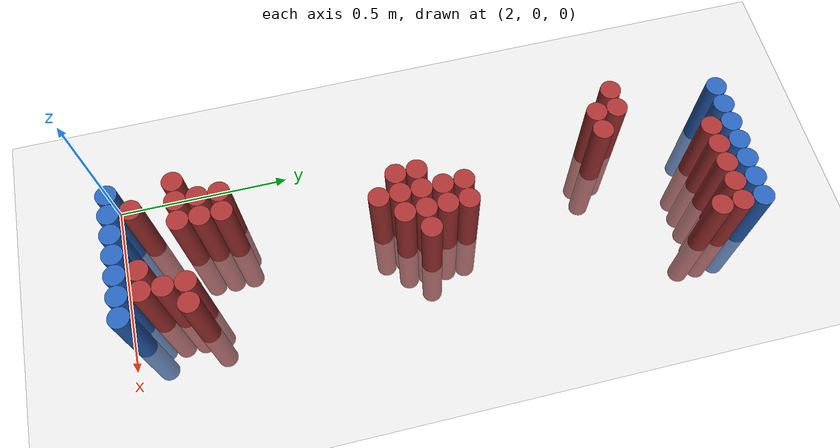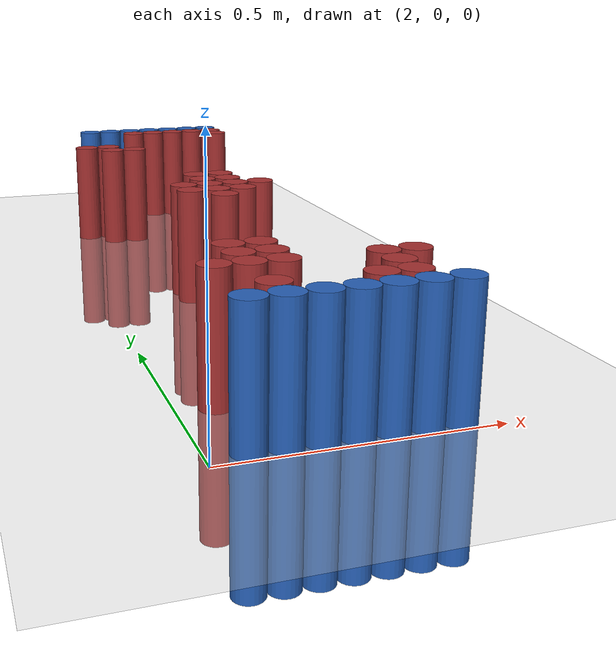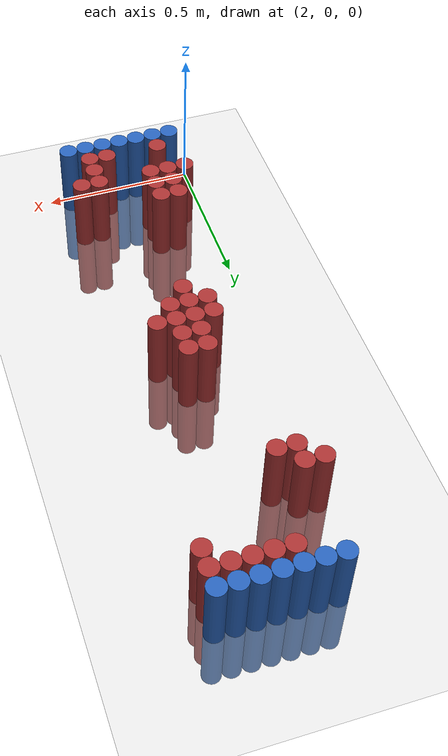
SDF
<sdf version="1.6">
 <world name="default">
  <model name="ground_plane">
   <static>1</static>
   <link name="link">
    <collision name="collision">
     <geometry><plane><normal>0 0 1</normal><size>100 100</size></plane></geometry>
     <surface><friction><ode><mu>100</mu><mu2>50</mu2></ode></friction></surface>
    </collision>
    <visual name="visual">
     <cast_shadows>0</cast_shadows>
     <geometry><plane><normal>0 0 1</normal><size>100 100</size></plane></geometry>
     <material>
      <script><uri>file://media/materials/scripts/gazebo.material</uri><name>Gazebo/Grey</name></script>
     </material>
    </visual>
   </link>
  </model>
  <model name="unit_cylinder_96">
   <static>1</static>
   <pose>2.130000 1.770000 0.000000 0.000000 0.000000 0.000000</pose>
   <link name="link">
    <inertial>
     <mass>1</mass>
     <inertia><ixx>0.145833</ixx><ixy>0</ixy><ixz>0</ixz><iyy>0.145833</iyy><iyz>0</iyz><izz>0.125</izz></inertia>
    </inertial>
    <collision name="collision">
     <geometry><cylinder><radius>0.030000</radius><length>0.5</length></cylinder></geometry>
    </collision>
    <visual name="visual">
     <geometry><cylinder><radius>0.030000</radius><length>0.5</length></cylinder></geometry>
     <material>
      <ambient>0.152000 0.379000 0.720000 1</ambient>
      <diffuse>0.152000 0.379000 0.720000 1</diffuse>
     </material>
     <material>
      <script><name>Gazebo/Grey</name><uri>file://media/materials/scripts/gazebo.material</uri></script>
     </material>
    </visual>
   </link>
  </model>
  <model name="unit_cylinder_97">
   <static>1</static>
   <pose>2.190000 1.770000 0.000000 0.000000 0.000000 0.000000</pose>
   <link name="link">
    <inertial>
     <mass>1</mass>
     <inertia><ixx>0.145833</ixx><ixy>0</ixy><ixz>0</ixz><iyy>0.145833</iyy><iyz>0</iyz><izz>0.125</izz></inertia>
    </inertial>
    <collision name="collision">
     <geometry><cylinder><radius>0.030000</radius><length>0.5</length></cylinder></geometry>
    </collision>
    <visual name="visual">
     <geometry><cylinder><radius>0.030000</radius><length>0.5</length></cylinder></geometry>
     <material>
      <ambient>0.152000 0.379000 0.720000 1</ambient>
      <diffuse>0.152000 0.379000 0.720000 1</diffuse>
     </material>
     <material>
      <script><name>Gazebo/Grey</name><uri>file://media/materials/scripts/gazebo.material</uri></script>
     </material>
    </visual>
   </link>
  </model>
  <model name="unit_cylinder_98">
   <static>1</static>
   <pose>2.250000 1.770000 0.000000 0.000000 0.000000 0.000000</pose>
   <link name="link">
    <inertial>
     <mass>1</mass>
     <inertia><ixx>0.145833</ixx><ixy>0</ixy><ixz>0</ixz><iyy>0.145833</iyy><iyz>0</iyz><izz>0.125</izz></inertia>
    </inertial>
    <collision name="collision">
     <geometry><cylinder><radius>0.030000</radius><length>0.5</length></cylinder></geometry>
    </collision>
    <visual name="visual">
     <geometry><cylinder><radius>0.030000</radius><length>0.5</length></cylinder></geometry>
     <material>
      <ambient>0.152000 0.379000 0.720000 1</ambient>
      <diffuse>0.152000 0.379000 0.720000 1</diffuse>
     </material>
     <material>
      <script><name>Gazebo/Grey</name><uri>file://media/materials/scripts/gazebo.material</uri></script>
     </material>
    </visual>
   </link>
  </model>
  <model name="unit_cylinder_99">
   <static>1</static>
   <pose>2.310000 1.770000 0.000000 0.000000 0.000000 0.000000</pose>
   <link name="link">
    <inertial>
     <mass>1</mass>
     <inertia><ixx>0.145833</ixx><ixy>0</ixy><ixz>0</ixz><iyy>0.145833</iyy><iyz>0</iyz><izz>0.125</izz></inertia>
    </inertial>
    <collision name="collision">
     <geometry><cylinder><radius>0.030000</radius><length>0.5</length></cylinder></geometry>
    </collision>
    <visual name="visual">
     <geometry><cylinder><radius>0.030000</radius><length>0.5</length></cylinder></geometry>
     <material>
      <ambient>0.152000 0.379000 0.720000 1</ambient>
      <diffuse>0.152000 0.379000 0.720000 1</diffuse>
     </material>
     <material>
      <script><name>Gazebo/Grey</name><uri>file://media/materials/scripts/gazebo.material</uri></script>
     </material>
    </visual>
   </link>
  </model>
  <model name="unit_cylinder_100">
   <static>1</static>
   <pose>2.370000 1.770000 0.000000 0.000000 0.000000 0.000000</pose>
   <link name="link">
    <inertial>
     <mass>1</mass>
     <inertia><ixx>0.145833</ixx><ixy>0</ixy><ixz>0</ixz><iyy>0.145833</iyy><iyz>0</iyz><izz>0.125</izz></inertia>
    </inertial>
    <collision name="collision">
     <geometry><cylinder><radius>0.030000</radius><length>0.5</length></cylinder></geometry>
    </collision>
    <visual name="visual">
     <geometry><cylinder><radius>0.030000</radius><length>0.5</length></cylinder></geometry>
     <material>
      <ambient>0.152000 0.379000 0.720000 1</ambient>
      <diffuse>0.152000 0.379000 0.720000 1</diffuse>
     </material>
     <material>
      <script><name>Gazebo/Grey</name><uri>file://media/materials/scripts/gazebo.material</uri></script>
     </material>
    </visual>
   </link>
  </model>
  <model name="unit_cylinder_101">
   <static>1</static>
   <pose>2.430000 1.770000 0.000000 0.000000 0.000000 0.000000</pose>
   <link name="link">
    <inertial>
     <mass>1</mass>
     <inertia><ixx>0.145833</ixx><ixy>0</ixy><ixz>0</ixz><iyy>0.145833</iyy><iyz>0</iyz><izz>0.125</izz></inertia>
    </inertial>
    <collision name="collision">
     <geometry><cylinder><radius>0.030000</radius><length>0.5</length></cylinder></geometry>
    </collision>
    <visual name="visual">
     <geometry><cylinder><radius>0.030000</radius><length>0.5</length></cylinder></geometry>
     <material>
      <ambient>0.152000 0.379000 0.720000 1</ambient>
      <diffuse>0.152000 0.379000 0.720000 1</diffuse>
     </material>
     <material>
      <script><name>Gazebo/Grey</name><uri>file://media/materials/scripts/gazebo.material</uri></script>
     </material>
    </visual>
   </link>
  </model>
  <model name="unit_cylinder_102">
   <static>1</static>
   <pose>2.490000 1.770000 0.000000 0.000000 0.000000 0.000000</pose>
   <link name="link">
    <inertial>
     <mass>1</mass>
     <inertia><ixx>0.145833</ixx><ixy>0</ixy><ixz>0</ixz><iyy>0.145833</iyy><iyz>0</iyz><izz>0.125</izz></inertia>
    </inertial>
    <collision name="collision">
     <geometry><cylinder><radius>0.030000</radius><length>0.5</length></cylinder></geometry>
    </collision>
    <visual name="visual">
     <geometry><cylinder><radius>0.030000</radius><length>0.5</length></cylinder></geometry>
     <material>
      <ambient>0.152000 0.379000 0.720000 1</ambient>
      <diffuse>0.152000 0.379000 0.720000 1</diffuse>
     </material>
     <material>
      <script><name>Gazebo/Grey</name><uri>file://media/materials/scripts/gazebo.material</uri></script>
     </material>
    </visual>
   </link>
  </model>
  <model name="unit_cylinder_125">
   <static>1</static>
   <pose>2.250000 1.710000 0.000000 0.000000 0.000000 0.000000</pose>
   <link name="link">
    <inertial>
     <mass>1</mass>
     <inertia><ixx>0.145833</ixx><ixy>0</ixy><ixz>0</ixz><iyy>0.145833</iyy><iyz>0</iyz><izz>0.125</izz></inertia>
    </inertial>
    <collision name="collision">
     <geometry><cylinder><radius>0.030000</radius><length>0.5</length></cylinder></geometry>
    </collision>
    <visual name="visual">
     <geometry><cylinder><radius>0.030000</radius><length>0.5</length></cylinder></geometry>
     <material>
      <ambient>0.648000 0.192000 0.192000 1</ambient>
      <diffuse>0.648000 0.192000 0.192000 1</diffuse>
     </material>
     <material>
      <script><name>Gazebo/Grey</name><uri>file://media/materials/scripts/gazebo.material</uri></script>
     </material>
    </visual>
   </link>
  </model>
  <model name="unit_cylinder_126">
   <static>1</static>
   <pose>2.310000 1.710000 0.000000 0.000000 0.000000 0.000000</pose>
   <link name="link">
    <inertial>
     <mass>1</mass>
     <inertia><ixx>0.145833</ixx><ixy>0</ixy><ixz>0</ixz><iyy>0.145833</iyy><iyz>0</iyz><izz>0.125</izz></inertia>
    </inertial>
    <collision name="collision">
     <geometry><cylinder><radius>0.030000</radius><length>0.5</length></cylinder></geometry>
    </collision>
    <visual name="visual">
     <geometry><cylinder><radius>0.030000</radius><length>0.5</length></cylinder></geometry>
     <material>
      <ambient>0.648000 0.192000 0.192000 1</ambient>
      <diffuse>0.648000 0.192000 0.192000 1</diffuse>
     </material>
     <material>
      <script><name>Gazebo/Grey</name><uri>file://media/materials/scripts/gazebo.material</uri></script>
     </material>
    </visual>
   </link>
  </model>
  <model name="unit_cylinder_127">
   <static>1</static>
   <pose>2.370000 1.710000 0.000000 0.000000 0.000000 0.000000</pose>
   <link name="link">
    <inertial>
     <mass>1</mass>
     <inertia><ixx>0.145833</ixx><ixy>0</ixy><ixz>0</ixz><iyy>0.145833</iyy><iyz>0</iyz><izz>0.125</izz></inertia>
    </inertial>
    <collision name="collision">
     <geometry><cylinder><radius>0.030000</radius><length>0.5</length></cylinder></geometry>
    </collision>
    <visual name="visual">
     <geometry><cylinder><radius>0.030000</radius><length>0.5</length></cylinder></geometry>
     <material>
      <ambient>0.648000 0.192000 0.192000 1</ambient>
      <diffuse>0.648000 0.192000 0.192000 1</diffuse>
     </material>
     <material>
      <script><name>Gazebo/Grey</name><uri>file://media/materials/scripts/gazebo.material</uri></script>
     </material>
    </visual>
   </link>
  </model>
  <model name="unit_cylinder_128">
   <static>1</static>
   <pose>2.430000 1.710000 0.000000 0.000000 0.000000 0.000000</pose>
   <link name="link">
    <inertial>
     <mass>1</mass>
     <inertia><ixx>0.145833</ixx><ixy>0</ixy><ixz>0</ixz><iyy>0.145833</iyy><iyz>0</iyz><izz>0.125</izz></inertia>
    </inertial>
    <collision name="collision">
     <geometry><cylinder><radius>0.030000</radius><length>0.5</length></cylinder></geometry>
    </collision>
    <visual name="visual">
     <geometry><cylinder><radius>0.030000</radius><length>0.5</length></cylinder></geometry>
     <material>
      <ambient>0.648000 0.192000 0.192000 1</ambient>
      <diffuse>0.648000 0.192000 0.192000 1</diffuse>
     </material>
     <material>
      <script><name>Gazebo/Grey</name><uri>file://media/materials/scripts/gazebo.material</uri></script>
     </material>
    </visual>
   </link>
  </model>
  <model name="unit_cylinder_129">
   <static>1</static>
   <pose>2.490000 1.710000 0.000000 0.000000 0.000000 0.000000</pose>
   <link name="link">
    <inertial>
     <mass>1</mass>
     <inertia><ixx>0.145833</ixx><ixy>0</ixy><ixz>0</ixz><iyy>0.145833</iyy><iyz>0</iyz><izz>0.125</izz></inertia>
    </inertial>
    <collision name="collision">
     <geometry><cylinder><radius>0.030000</radius><length>0.5</length></cylinder></geometry>
    </collision>
    <visual name="visual">
     <geometry><cylinder><radius>0.030000</radius><length>0.5</length></cylinder></geometry>
     <material>
      <ambient>0.648000 0.192000 0.192000 1</ambient>
      <diffuse>0.648000 0.192000 0.192000 1</diffuse>
     </material>
     <material>
      <script><name>Gazebo/Grey</name><uri>file://media/materials/scripts/gazebo.material</uri></script>
     </material>
    </visual>
   </link>
  </model>
  <model name="unit_cylinder_143">
   <static>1</static>
   <pose>2.490000 1.650000 0.000000 0.000000 0.000000 0.000000</pose>
   <link name="link">
    <inertial>
     <mass>1</mass>
     <inertia><ixx>0.145833</ixx><ixy>0</ixy><ixz>0</ixz><iyy>0.145833</iyy><iyz>0</iyz><izz>0.125</izz></inertia>
    </inertial>
    <collision name="collision">
     <geometry><cylinder><radius>0.030000</radius><length>0.5</length></cylinder></geometry>
    </collision>
    <visual name="visual">
     <geometry><cylinder><radius>0.030000</radius><length>0.5</length></cylinder></geometry>
     <material>
      <ambient>0.648000 0.192000 0.192000 1</ambient>
      <diffuse>0.648000 0.192000 0.192000 1</diffuse>
     </material>
     <material>
      <script><name>Gazebo/Grey</name><uri>file://media/materials/scripts/gazebo.material</uri></script>
     </material>
    </visual>
   </link>
  </model>
  <model name="unit_cylinder_164">
   <static>1</static>
   <pose>2.070000 1.470000 0.000000 0.000000 0.000000 0.000000</pose>
   <link name="link">
    <inertial>
     <mass>1</mass>
     <inertia><ixx>0.145833</ixx><ixy>0</ixy><ixz>0</ixz><iyy>0.145833</iyy><iyz>0</iyz><izz>0.125</izz></inertia>
    </inertial>
    <collision name="collision">
     <geometry><cylinder><radius>0.030000</radius><length>0.5</length></cylinder></geometry>
    </collision>
    <visual name="visual">
     <geometry><cylinder><radius>0.030000</radius><length>0.5</length></cylinder></geometry>
     <material>
      <ambient>0.648000 0.192000 0.192000 1</ambient>
      <diffuse>0.648000 0.192000 0.192000 1</diffuse>
     </material>
     <material>
      <script><name>Gazebo/Grey</name><uri>file://media/materials/scripts/gazebo.material</uri></script>
     </material>
    </visual>
   </link>
  </model>
  <model name="unit_cylinder_165">
   <static>1</static>
   <pose>2.130000 1.470000 0.000000 0.000000 0.000000 0.000000</pose>
   <link name="link">
    <inertial>
     <mass>1</mass>
     <inertia><ixx>0.145833</ixx><ixy>0</ixy><ixz>0</ixz><iyy>0.145833</iyy><iyz>0</iyz><izz>0.125</izz></inertia>
    </inertial>
    <collision name="collision">
     <geometry><cylinder><radius>0.030000</radius><length>0.5</length></cylinder></geometry>
    </collision>
    <visual name="visual">
     <geometry><cylinder><radius>0.030000</radius><length>0.5</length></cylinder></geometry>
     <material>
      <ambient>0.648000 0.192000 0.192000 1</ambient>
      <diffuse>0.648000 0.192000 0.192000 1</diffuse>
     </material>
     <material>
      <script><name>Gazebo/Grey</name><uri>file://media/materials/scripts/gazebo.material</uri></script>
     </material>
    </visual>
   </link>
  </model>
  <model name="unit_cylinder_169">
   <static>1</static>
   <pose>2.130000 1.410000 0.000000 0.000000 0.000000 0.000000</pose>
   <link name="link">
    <inertial>
     <mass>1</mass>
     <inertia><ixx>0.145833</ixx><ixy>0</ixy><ixz>0</ixz><iyy>0.145833</iyy><iyz>0</iyz><izz>0.125</izz></inertia>
    </inertial>
    <collision name="collision">
     <geometry><cylinder><radius>0.030000</radius><length>0.5</length></cylinder></geometry>
    </collision>
    <visual name="visual">
     <geometry><cylinder><radius>0.030000</radius><length>0.5</length></cylinder></geometry>
     <material>
      <ambient>0.648000 0.192000 0.192000 1</ambient>
      <diffuse>0.648000 0.192000 0.192000 1</diffuse>
     </material>
     <material>
      <script><name>Gazebo/Grey</name><uri>file://media/materials/scripts/gazebo.material</uri></script>
     </material>
    </visual>
   </link>
  </model>
  <model name="unit_cylinder_170">
   <static>1</static>
   <pose>2.190000 1.410000 0.000000 0.000000 0.000000 0.000000</pose>
   <link name="link">
    <inertial>
     <mass>1</mass>
     <inertia><ixx>0.145833</ixx><ixy>0</ixy><ixz>0</ixz><iyy>0.145833</iyy><iyz>0</iyz><izz>0.125</izz></inertia>
    </inertial>
    <collision name="collision">
     <geometry><cylinder><radius>0.030000</radius><length>0.5</length></cylinder></geometry>
    </collision>
    <visual name="visual">
     <geometry><cylinder><radius>0.030000</radius><length>0.5</length></cylinder></geometry>
     <material>
      <ambient>0.648000 0.192000 0.192000 1</ambient>
      <diffuse>0.648000 0.192000 0.192000 1</diffuse>
     </material>
     <material>
      <script><name>Gazebo/Grey</name><uri>file://media/materials/scripts/gazebo.material</uri></script>
     </material>
    </visual>
   </link>
  </model>
  <model name="unit_cylinder_187">
   <static>1</static>
   <pose>2.250000 0.990000 0.000000 0.000000 0.000000 0.000000</pose>
   <link name="link">
    <inertial>
     <mass>1</mass>
     <inertia><ixx>0.145833</ixx><ixy>0</ixy><ixz>0</ixz><iyy>0.145833</iyy><iyz>0</iyz><izz>0.125</izz></inertia>
    </inertial>
    <collision name="collision">
     <geometry><cylinder><radius>0.030000</radius><length>0.5</length></cylinder></geometry>
    </collision>
    <visual name="visual">
     <geometry><cylinder><radius>0.030000</radius><length>0.5</length></cylinder></geometry>
     <material>
      <ambient>0.648000 0.192000 0.192000 1</ambient>
      <diffuse>0.648000 0.192000 0.192000 1</diffuse>
     </material>
     <material>
      <script><name>Gazebo/Grey</name><uri>file://media/materials/scripts/gazebo.material</uri></script>
     </material>
    </visual>
   </link>
  </model>
  <model name="unit_cylinder_188">
   <static>1</static>
   <pose>2.310000 0.990000 0.000000 0.000000 0.000000 0.000000</pose>
   <link name="link">
    <inertial>
     <mass>1</mass>
     <inertia><ixx>0.145833</ixx><ixy>0</ixy><ixz>0</ixz><iyy>0.145833</iyy><iyz>0</iyz><izz>0.125</izz></inertia>
    </inertial>
    <collision name="collision">
     <geometry><cylinder><radius>0.030000</radius><length>0.5</length></cylinder></geometry>
    </collision>
    <visual name="visual">
     <geometry><cylinder><radius>0.030000</radius><length>0.5</length></cylinder></geometry>
     <material>
      <ambient>0.648000 0.192000 0.192000 1</ambient>
      <diffuse>0.648000 0.192000 0.192000 1</diffuse>
     </material>
     <material>
      <script><name>Gazebo/Grey</name><uri>file://media/materials/scripts/gazebo.material</uri></script>
     </material>
    </visual>
   </link>
  </model>
  <model name="unit_cylinder_190">
   <static>1</static>
   <pose>2.250000 0.930000 0.000000 0.000000 0.000000 0.000000</pose>
   <link name="link">
    <inertial>
     <mass>1</mass>
     <inertia><ixx>0.145833</ixx><ixy>0</ixy><ixz>0</ixz><iyy>0.145833</iyy><iyz>0</iyz><izz>0.125</izz></inertia>
    </inertial>
    <collision name="collision">
     <geometry><cylinder><radius>0.030000</radius><length>0.5</length></cylinder></geometry>
    </collision>
    <visual name="visual">
     <geometry><cylinder><radius>0.030000</radius><length>0.5</length></cylinder></geometry>
     <material>
      <ambient>0.648000 0.192000 0.192000 1</ambient>
      <diffuse>0.648000 0.192000 0.192000 1</diffuse>
     </material>
     <material>
      <script><name>Gazebo/Grey</name><uri>file://media/materials/scripts/gazebo.material</uri></script>
     </material>
    </visual>
   </link>
  </model>
  <model name="unit_cylinder_191">
   <static>1</static>
   <pose>2.310000 0.930000 0.000000 0.000000 0.000000 0.000000</pose>
   <link name="link">
    <inertial>
     <mass>1</mass>
     <inertia><ixx>0.145833</ixx><ixy>0</ixy><ixz>0</ixz><iyy>0.145833</iyy><iyz>0</iyz><izz>0.125</izz></inertia>
    </inertial>
    <collision name="collision">
     <geometry><cylinder><radius>0.030000</radius><length>0.5</length></cylinder></geometry>
    </collision>
    <visual name="visual">
     <geometry><cylinder><radius>0.030000</radius><length>0.5</length></cylinder></geometry>
     <material>
      <ambient>0.648000 0.192000 0.192000 1</ambient>
      <diffuse>0.648000 0.192000 0.192000 1</diffuse>
     </material>
     <material>
      <script><name>Gazebo/Grey</name><uri>file://media/materials/scripts/gazebo.material</uri></script>
     </material>
    </visual>
   </link>
  </model>
  <model name="unit_cylinder_193">
   <static>1</static>
   <pose>2.190000 0.870000 0.000000 0.000000 0.000000 0.000000</pose>
   <link name="link">
    <inertial>
     <mass>1</mass>
     <inertia><ixx>0.145833</ixx><ixy>0</ixy><ixz>0</ixz><iyy>0.145833</iyy><iyz>0</iyz><izz>0.125</izz></inertia>
    </inertial>
    <collision name="collision">
     <geometry><cylinder><radius>0.030000</radius><length>0.5</length></cylinder></geometry>
    </collision>
    <visual name="visual">
     <geometry><cylinder><radius>0.030000</radius><length>0.5</length></cylinder></geometry>
     <material>
      <ambient>0.648000 0.192000 0.192000 1</ambient>
      <diffuse>0.648000 0.192000 0.192000 1</diffuse>
     </material>
     <material>
      <script><name>Gazebo/Grey</name><uri>file://media/materials/scripts/gazebo.material</uri></script>
     </material>
    </visual>
   </link>
  </model>
  <model name="unit_cylinder_194">
   <static>1</static>
   <pose>2.250000 0.870000 0.000000 0.000000 0.000000 0.000000</pose>
   <link name="link">
    <inertial>
     <mass>1</mass>
     <inertia><ixx>0.145833</ixx><ixy>0</ixy><ixz>0</ixz><iyy>0.145833</iyy><iyz>0</iyz><izz>0.125</izz></inertia>
    </inertial>
    <collision name="collision">
     <geometry><cylinder><radius>0.030000</radius><length>0.5</length></cylinder></geometry>
    </collision>
    <visual name="visual">
     <geometry><cylinder><radius>0.030000</radius><length>0.5</length></cylinder></geometry>
     <material>
      <ambient>0.648000 0.192000 0.192000 1</ambient>
      <diffuse>0.648000 0.192000 0.192000 1</diffuse>
     </material>
     <material>
      <script><name>Gazebo/Grey</name><uri>file://media/materials/scripts/gazebo.material</uri></script>
     </material>
    </visual>
   </link>
  </model>
  <model name="unit_cylinder_195">
   <static>1</static>
   <pose>2.310000 0.870000 0.000000 0.000000 0.000000 0.000000</pose>
   <link name="link">
    <inertial>
     <mass>1</mass>
     <inertia><ixx>0.145833</ixx><ixy>0</ixy><ixz>0</ixz><iyy>0.145833</iyy><iyz>0</iyz><izz>0.125</izz></inertia>
    </inertial>
    <collision name="collision">
     <geometry><cylinder><radius>0.030000</radius><length>0.5</length></cylinder></geometry>
    </collision>
    <visual name="visual">
     <geometry><cylinder><radius>0.030000</radius><length>0.5</length></cylinder></geometry>
     <material>
      <ambient>0.648000 0.192000 0.192000 1</ambient>
      <diffuse>0.648000 0.192000 0.192000 1</diffuse>
     </material>
     <material>
      <script><name>Gazebo/Grey</name><uri>file://media/materials/scripts/gazebo.material</uri></script>
     </material>
    </visual>
   </link>
  </model>
  <model name="unit_cylinder_196">
   <static>1</static>
   <pose>2.370000 0.870000 0.000000 0.000000 0.000000 0.000000</pose>
   <link name="link">
    <inertial>
     <mass>1</mass>
     <inertia><ixx>0.145833</ixx><ixy>0</ixy><ixz>0</ixz><iyy>0.145833</iyy><iyz>0</iyz><izz>0.125</izz></inertia>
    </inertial>
    <collision name="collision">
     <geometry><cylinder><radius>0.030000</radius><length>0.5</length></cylinder></geometry>
    </collision>
    <visual name="visual">
     <geometry><cylinder><radius>0.030000</radius><length>0.5</length></cylinder></geometry>
     <material>
      <ambient>0.648000 0.192000 0.192000 1</ambient>
      <diffuse>0.648000 0.192000 0.192000 1</diffuse>
     </material>
     <material>
      <script><name>Gazebo/Grey</name><uri>file://media/materials/scripts/gazebo.material</uri></script>
     </material>
    </visual>
   </link>
  </model>
  <model name="unit_cylinder_199">
   <static>1</static>
   <pose>2.190000 0.810000 0.000000 0.000000 0.000000 0.000000</pose>
   <link name="link">
    <inertial>
     <mass>1</mass>
     <inertia><ixx>0.145833</ixx><ixy>0</ixy><ixz>0</ixz><iyy>0.145833</iyy><iyz>0</iyz><izz>0.125</izz></inertia>
    </inertial>
    <collision name="collision">
     <geometry><cylinder><radius>0.030000</radius><length>0.5</length></cylinder></geometry>
    </collision>
    <visual name="visual">
     <geometry><cylinder><radius>0.030000</radius><length>0.5</length></cylinder></geometry>
     <material>
      <ambient>0.648000 0.192000 0.192000 1</ambient>
      <diffuse>0.648000 0.192000 0.192000 1</diffuse>
     </material>
     <material>
      <script><name>Gazebo/Grey</name><uri>file://media/materials/scripts/gazebo.material</uri></script>
     </material>
    </visual>
   </link>
  </model>
  <model name="unit_cylinder_200">
   <static>1</static>
   <pose>2.250000 0.810000 0.000000 0.000000 0.000000 0.000000</pose>
   <link name="link">
    <inertial>
     <mass>1</mass>
     <inertia><ixx>0.145833</ixx><ixy>0</ixy><ixz>0</ixz><iyy>0.145833</iyy><iyz>0</iyz><izz>0.125</izz></inertia>
    </inertial>
    <collision name="collision">
     <geometry><cylinder><radius>0.030000</radius><length>0.5</length></cylinder></geometry>
    </collision>
    <visual name="visual">
     <geometry><cylinder><radius>0.030000</radius><length>0.5</length></cylinder></geometry>
     <material>
      <ambient>0.648000 0.192000 0.192000 1</ambient>
      <diffuse>0.648000 0.192000 0.192000 1</diffuse>
     </material>
     <material>
      <script><name>Gazebo/Grey</name><uri>file://media/materials/scripts/gazebo.material</uri></script>
     </material>
    </visual>
   </link>
  </model>
  <model name="unit_cylinder_201">
   <static>1</static>
   <pose>2.310000 0.810000 0.000000 0.000000 0.000000 0.000000</pose>
   <link name="link">
    <inertial>
     <mass>1</mass>
     <inertia><ixx>0.145833</ixx><ixy>0</ixy><ixz>0</ixz><iyy>0.145833</iyy><iyz>0</iyz><izz>0.125</izz></inertia>
    </inertial>
    <collision name="collision">
     <geometry><cylinder><radius>0.030000</radius><length>0.5</length></cylinder></geometry>
    </collision>
    <visual name="visual">
     <geometry><cylinder><radius>0.030000</radius><length>0.5</length></cylinder></geometry>
     <material>
      <ambient>0.648000 0.192000 0.192000 1</ambient>
      <diffuse>0.648000 0.192000 0.192000 1</diffuse>
     </material>
     <material>
      <script><name>Gazebo/Grey</name><uri>file://media/materials/scripts/gazebo.material</uri></script>
     </material>
    </visual>
   </link>
  </model>
  <model name="unit_cylinder_204">
   <static>1</static>
   <pose>2.250000 0.750000 0.000000 0.000000 0.000000 0.000000</pose>
   <link name="link">
    <inertial>
     <mass>1</mass>
     <inertia><ixx>0.145833</ixx><ixy>0</ixy><ixz>0</ixz><iyy>0.145833</iyy><iyz>0</iyz><izz>0.125</izz></inertia>
    </inertial>
    <collision name="collision">
     <geometry><cylinder><radius>0.030000</radius><length>0.5</length></cylinder></geometry>
    </collision>
    <visual name="visual">
     <geometry><cylinder><radius>0.030000</radius><length>0.5</length></cylinder></geometry>
     <material>
      <ambient>0.648000 0.192000 0.192000 1</ambient>
      <diffuse>0.648000 0.192000 0.192000 1</diffuse>
     </material>
     <material>
      <script><name>Gazebo/Grey</name><uri>file://media/materials/scripts/gazebo.material</uri></script>
     </material>
    </visual>
   </link>
  </model>
  <model name="unit_cylinder_226">
   <static>1</static>
   <pose>2.130000 0.330000 0.000000 0.000000 0.000000 0.000000</pose>
   <link name="link">
    <inertial>
     <mass>1</mass>
     <inertia><ixx>0.145833</ixx><ixy>0</ixy><ixz>0</ixz><iyy>0.145833</iyy><iyz>0</iyz><izz>0.125</izz></inertia>
    </inertial>
    <collision name="collision">
     <geometry><cylinder><radius>0.030000</radius><length>0.5</length></cylinder></geometry>
    </collision>
    <visual name="visual">
     <geometry><cylinder><radius>0.030000</radius><length>0.5</length></cylinder></geometry>
     <material>
      <ambient>0.648000 0.192000 0.192000 1</ambient>
      <diffuse>0.648000 0.192000 0.192000 1</diffuse>
     </material>
     <material>
      <script><name>Gazebo/Grey</name><uri>file://media/materials/scripts/gazebo.material</uri></script>
     </material>
    </visual>
   </link>
  </model>
  <model name="unit_cylinder_227">
   <static>1</static>
   <pose>2.190000 0.330000 0.000000 0.000000 0.000000 0.000000</pose>
   <link name="link">
    <inertial>
     <mass>1</mass>
     <inertia><ixx>0.145833</ixx><ixy>0</ixy><ixz>0</ixz><iyy>0.145833</iyy><iyz>0</iyz><izz>0.125</izz></inertia>
    </inertial>
    <collision name="collision">
     <geometry><cylinder><radius>0.030000</radius><length>0.5</length></cylinder></geometry>
    </collision>
    <visual name="visual">
     <geometry><cylinder><radius>0.030000</radius><length>0.5</length></cylinder></geometry>
     <material>
      <ambient>0.648000 0.192000 0.192000 1</ambient>
      <diffuse>0.648000 0.192000 0.192000 1</diffuse>
     </material>
     <material>
      <script><name>Gazebo/Grey</name><uri>file://media/materials/scripts/gazebo.material</uri></script>
     </material>
    </visual>
   </link>
  </model>
  <model name="unit_cylinder_231">
   <static>1</static>
   <pose>2.130000 0.270000 0.000000 0.000000 0.000000 0.000000</pose>
   <link name="link">
    <inertial>
     <mass>1</mass>
     <inertia><ixx>0.145833</ixx><ixy>0</ixy><ixz>0</ixz><iyy>0.145833</iyy><iyz>0</iyz><izz>0.125</izz></inertia>
    </inertial>
    <collision name="collision">
     <geometry><cylinder><radius>0.030000</radius><length>0.5</length></cylinder></geometry>
    </collision>
    <visual name="visual">
     <geometry><cylinder><radius>0.030000</radius><length>0.5</length></cylinder></geometry>
     <material>
      <ambient>0.648000 0.192000 0.192000 1</ambient>
      <diffuse>0.648000 0.192000 0.192000 1</diffuse>
     </material>
     <material>
      <script><name>Gazebo/Grey</name><uri>file://media/materials/scripts/gazebo.material</uri></script>
     </material>
    </visual>
   </link>
  </model>
  <model name="unit_cylinder_232">
   <static>1</static>
   <pose>2.190000 0.270000 0.000000 0.000000 0.000000 0.000000</pose>
   <link name="link">
    <inertial>
     <mass>1</mass>
     <inertia><ixx>0.145833</ixx><ixy>0</ixy><ixz>0</ixz><iyy>0.145833</iyy><iyz>0</iyz><izz>0.125</izz></inertia>
    </inertial>
    <collision name="collision">
     <geometry><cylinder><radius>0.030000</radius><length>0.5</length></cylinder></geometry>
    </collision>
    <visual name="visual">
     <geometry><cylinder><radius>0.030000</radius><length>0.5</length></cylinder></geometry>
     <material>
      <ambient>0.648000 0.192000 0.192000 1</ambient>
      <diffuse>0.648000 0.192000 0.192000 1</diffuse>
     </material>
     <material>
      <script><name>Gazebo/Grey</name><uri>file://media/materials/scripts/gazebo.material</uri></script>
     </material>
    </visual>
   </link>
  </model>
  <model name="unit_cylinder_236">
   <static>1</static>
   <pose>2.070000 0.210000 0.000000 0.000000 0.000000 0.000000</pose>
   <link name="link">
    <inertial>
     <mass>1</mass>
     <inertia><ixx>0.145833</ixx><ixy>0</ixy><ixz>0</ixz><iyy>0.145833</iyy><iyz>0</iyz><izz>0.125</izz></inertia>
    </inertial>
    <collision name="collision">
     <geometry><cylinder><radius>0.030000</radius><length>0.5</length></cylinder></geometry>
    </collision>
    <visual name="visual">
     <geometry><cylinder><radius>0.030000</radius><length>0.5</length></cylinder></geometry>
     <material>
      <ambient>0.648000 0.192000 0.192000 1</ambient>
      <diffuse>0.648000 0.192000 0.192000 1</diffuse>
     </material>
     <material>
      <script><name>Gazebo/Grey</name><uri>file://media/materials/scripts/gazebo.material</uri></script>
     </material>
    </visual>
   </link>
  </model>
  <model name="unit_cylinder_237">
   <static>1</static>
   <pose>2.130000 0.210000 0.000000 0.000000 0.000000 0.000000</pose>
   <link name="link">
    <inertial>
     <mass>1</mass>
     <inertia><ixx>0.145833</ixx><ixy>0</ixy><ixz>0</ixz><iyy>0.145833</iyy><iyz>0</iyz><izz>0.125</izz></inertia>
    </inertial>
    <collision name="collision">
     <geometry><cylinder><radius>0.030000</radius><length>0.5</length></cylinder></geometry>
    </collision>
    <visual name="visual">
     <geometry><cylinder><radius>0.030000</radius><length>0.5</length></cylinder></geometry>
     <material>
      <ambient>0.648000 0.192000 0.192000 1</ambient>
      <diffuse>0.648000 0.192000 0.192000 1</diffuse>
     </material>
     <material>
      <script><name>Gazebo/Grey</name><uri>file://media/materials/scripts/gazebo.material</uri></script>
     </material>
    </visual>
   </link>
  </model>
  <model name="unit_cylinder_238">
   <static>1</static>
   <pose>2.190000 0.210000 0.000000 0.000000 0.000000 0.000000</pose>
   <link name="link">
    <inertial>
     <mass>1</mass>
     <inertia><ixx>0.145833</ixx><ixy>0</ixy><ixz>0</ixz><iyy>0.145833</iyy><iyz>0</iyz><izz>0.125</izz></inertia>
    </inertial>
    <collision name="collision">
     <geometry><cylinder><radius>0.030000</radius><length>0.5</length></cylinder></geometry>
    </collision>
    <visual name="visual">
     <geometry><cylinder><radius>0.030000</radius><length>0.5</length></cylinder></geometry>
     <material>
      <ambient>0.648000 0.192000 0.192000 1</ambient>
      <diffuse>0.648000 0.192000 0.192000 1</diffuse>
     </material>
     <material>
      <script><name>Gazebo/Grey</name><uri>file://media/materials/scripts/gazebo.material</uri></script>
     </material>
    </visual>
   </link>
  </model>
  <model name="unit_cylinder_239">
   <static>1</static>
   <pose>2.370000 0.210000 0.000000 0.000000 0.000000 0.000000</pose>
   <link name="link">
    <inertial>
     <mass>1</mass>
     <inertia><ixx>0.145833</ixx><ixy>0</ixy><ixz>0</ixz><iyy>0.145833</iyy><iyz>0</iyz><izz>0.125</izz></inertia>
    </inertial>
    <collision name="collision">
     <geometry><cylinder><radius>0.030000</radius><length>0.5</length></cylinder></geometry>
    </collision>
    <visual name="visual">
     <geometry><cylinder><radius>0.030000</radius><length>0.5</length></cylinder></geometry>
     <material>
      <ambient>0.648000 0.192000 0.192000 1</ambient>
      <diffuse>0.648000 0.192000 0.192000 1</diffuse>
     </material>
     <material>
      <script><name>Gazebo/Grey</name><uri>file://media/materials/scripts/gazebo.material</uri></script>
     </material>
    </visual>
   </link>
  </model>
  <model name="unit_cylinder_240">
   <static>1</static>
   <pose>2.430000 0.210000 0.000000 0.000000 0.000000 0.000000</pose>
   <link name="link">
    <inertial>
     <mass>1</mass>
     <inertia><ixx>0.145833</ixx><ixy>0</ixy><ixz>0</ixz><iyy>0.145833</iyy><iyz>0</iyz><izz>0.125</izz></inertia>
    </inertial>
    <collision name="collision">
     <geometry><cylinder><radius>0.030000</radius><length>0.5</length></cylinder></geometry>
    </collision>
    <visual name="visual">
     <geometry><cylinder><radius>0.030000</radius><length>0.5</length></cylinder></geometry>
     <material>
      <ambient>0.648000 0.192000 0.192000 1</ambient>
      <diffuse>0.648000 0.192000 0.192000 1</diffuse>
     </material>
     <material>
      <script><name>Gazebo/Grey</name><uri>file://media/materials/scripts/gazebo.material</uri></script>
     </material>
    </visual>
   </link>
  </model>
  <model name="unit_cylinder_243">
   <static>1</static>
   <pose>2.370000 0.150000 0.000000 0.000000 0.000000 0.000000</pose>
   <link name="link">
    <inertial>
     <mass>1</mass>
     <inertia><ixx>0.145833</ixx><ixy>0</ixy><ixz>0</ixz><iyy>0.145833</iyy><iyz>0</iyz><izz>0.125</izz></inertia>
    </inertial>
    <collision name="collision">
     <geometry><cylinder><radius>0.030000</radius><length>0.5</length></cylinder></geometry>
    </collision>
    <visual name="visual">
     <geometry><cylinder><radius>0.030000</radius><length>0.5</length></cylinder></geometry>
     <material>
      <ambient>0.648000 0.192000 0.192000 1</ambient>
      <diffuse>0.648000 0.192000 0.192000 1</diffuse>
     </material>
     <material>
      <script><name>Gazebo/Grey</name><uri>file://media/materials/scripts/gazebo.material</uri></script>
     </material>
    </visual>
   </link>
  </model>
  <model name="unit_cylinder_246">
   <static>1</static>
   <pose>2.130000 0.090000 0.000000 0.000000 0.000000 0.000000</pose>
   <link name="link">
    <inertial>
     <mass>1</mass>
     <inertia><ixx>0.145833</ixx><ixy>0</ixy><ixz>0</ixz><iyy>0.145833</iyy><iyz>0</iyz><izz>0.125</izz></inertia>
    </inertial>
    <collision name="collision">
     <geometry><cylinder><radius>0.030000</radius><length>0.5</length></cylinder></geometry>
    </collision>
    <visual name="visual">
     <geometry><cylinder><radius>0.030000</radius><length>0.5</length></cylinder></geometry>
     <material>
      <ambient>0.648000 0.192000 0.192000 1</ambient>
      <diffuse>0.648000 0.192000 0.192000 1</diffuse>
     </material>
     <material>
      <script><name>Gazebo/Grey</name><uri>file://media/materials/scripts/gazebo.material</uri></script>
     </material>
    </visual>
   </link>
  </model>
  <model name="unit_cylinder_247">
   <static>1</static>
   <pose>2.310000 0.090000 0.000000 0.000000 0.000000 0.000000</pose>
   <link name="link">
    <inertial>
     <mass>1</mass>
     <inertia><ixx>0.145833</ixx><ixy>0</ixy><ixz>0</ixz><iyy>0.145833</iyy><iyz>0</iyz><izz>0.125</izz></inertia>
    </inertial>
    <collision name="collision">
     <geometry><cylinder><radius>0.030000</radius><length>0.5</length></cylinder></geometry>
    </collision>
    <visual name="visual">
     <geometry><cylinder><radius>0.030000</radius><length>0.5</length></cylinder></geometry>
     <material>
      <ambient>0.648000 0.192000 0.192000 1</ambient>
      <diffuse>0.648000 0.192000 0.192000 1</diffuse>
     </material>
     <material>
      <script><name>Gazebo/Grey</name><uri>file://media/materials/scripts/gazebo.material</uri></script>
     </material>
    </visual>
   </link>
  </model>
  <model name="unit_cylinder_248">
   <static>1</static>
   <pose>2.370000 0.090000 0.000000 0.000000 0.000000 0.000000</pose>
   <link name="link">
    <inertial>
     <mass>1</mass>
     <inertia><ixx>0.145833</ixx><ixy>0</ixy><ixz>0</ixz><iyy>0.145833</iyy><iyz>0</iyz><izz>0.125</izz></inertia>
    </inertial>
    <collision name="collision">
     <geometry><cylinder><radius>0.030000</radius><length>0.5</length></cylinder></geometry>
    </collision>
    <visual name="visual">
     <geometry><cylinder><radius>0.030000</radius><length>0.5</length></cylinder></geometry>
     <material>
      <ambient>0.648000 0.192000 0.192000 1</ambient>
      <diffuse>0.648000 0.192000 0.192000 1</diffuse>
     </material>
     <material>
      <script><name>Gazebo/Grey</name><uri>file://media/materials/scripts/gazebo.material</uri></script>
     </material>
    </visual>
   </link>
  </model>
  <model name="unit_cylinder_261">
   <static>1</static>
   <pose>2.070000 0.030000 0.000000 0.000000 0.000000 0.000000</pose>
   <link name="link">
    <inertial>
     <mass>1</mass>
     <inertia><ixx>0.145833</ixx><ixy>0</ixy><ixz>0</ixz><iyy>0.145833</iyy><iyz>0</iyz><izz>0.125</izz></inertia>
    </inertial>
    <collision name="collision">
     <geometry><cylinder><radius>0.030000</radius><length>0.5</length></cylinder></geometry>
    </collision>
    <visual name="visual">
     <geometry><cylinder><radius>0.030000</radius><length>0.5</length></cylinder></geometry>
     <material>
      <ambient>0.152000 0.379000 0.720000 1</ambient>
      <diffuse>0.152000 0.379000 0.720000 1</diffuse>
     </material>
     <material>
      <script><name>Gazebo/Grey</name><uri>file://media/materials/scripts/gazebo.material</uri></script>
     </material>
    </visual>
   </link>
  </model>
  <model name="unit_cylinder_262">
   <static>1</static>
   <pose>2.130000 0.030000 0.000000 0.000000 0.000000 0.000000</pose>
   <link name="link">
    <inertial>
     <mass>1</mass>
     <inertia><ixx>0.145833</ixx><ixy>0</ixy><ixz>0</ixz><iyy>0.145833</iyy><iyz>0</iyz><izz>0.125</izz></inertia>
    </inertial>
    <collision name="collision">
     <geometry><cylinder><radius>0.030000</radius><length>0.5</length></cylinder></geometry>
    </collision>
    <visual name="visual">
     <geometry><cylinder><radius>0.030000</radius><length>0.5</length></cylinder></geometry>
     <material>
      <ambient>0.152000 0.379000 0.720000 1</ambient>
      <diffuse>0.152000 0.379000 0.720000 1</diffuse>
     </material>
     <material>
      <script><name>Gazebo/Grey</name><uri>file://media/materials/scripts/gazebo.material</uri></script>
     </material>
    </visual>
   </link>
  </model>
  <model name="unit_cylinder_263">
   <static>1</static>
   <pose>2.190000 0.030000 0.000000 0.000000 0.000000 0.000000</pose>
   <link name="link">
    <inertial>
     <mass>1</mass>
     <inertia><ixx>0.145833</ixx><ixy>0</ixy><ixz>0</ixz><iyy>0.145833</iyy><iyz>0</iyz><izz>0.125</izz></inertia>
    </inertial>
    <collision name="collision">
     <geometry><cylinder><radius>0.030000</radius><length>0.5</length></cylinder></geometry>
    </collision>
    <visual name="visual">
     <geometry><cylinder><radius>0.030000</radius><length>0.5</length></cylinder></geometry>
     <material>
      <ambient>0.152000 0.379000 0.720000 1</ambient>
      <diffuse>0.152000 0.379000 0.720000 1</diffuse>
     </material>
     <material>
      <script><name>Gazebo/Grey</name><uri>file://media/materials/scripts/gazebo.material</uri></script>
     </material>
    </visual>
   </link>
  </model>
  <model name="unit_cylinder_264">
   <static>1</static>
   <pose>2.250000 0.030000 0.000000 0.000000 0.000000 0.000000</pose>
   <link name="link">
    <inertial>
     <mass>1</mass>
     <inertia><ixx>0.145833</ixx><ixy>0</ixy><ixz>0</ixz><iyy>0.145833</iyy><iyz>0</iyz><izz>0.125</izz></inertia>
    </inertial>
    <collision name="collision">
     <geometry><cylinder><radius>0.030000</radius><length>0.5</length></cylinder></geometry>
    </collision>
    <visual name="visual">
     <geometry><cylinder><radius>0.030000</radius><length>0.5</length></cylinder></geometry>
     <material>
      <ambient>0.152000 0.379000 0.720000 1</ambient>
      <diffuse>0.152000 0.379000 0.720000 1</diffuse>
     </material>
     <material>
      <script><name>Gazebo/Grey</name><uri>file://media/materials/scripts/gazebo.material</uri></script>
     </material>
    </visual>
   </link>
  </model>
  <model name="unit_cylinder_265">
   <static>1</static>
   <pose>2.310000 0.030000 0.000000 0.000000 0.000000 0.000000</pose>
   <link name="link">
    <inertial>
     <mass>1</mass>
     <inertia><ixx>0.145833</ixx><ixy>0</ixy><ixz>0</ixz><iyy>0.145833</iyy><iyz>0</iyz><izz>0.125</izz></inertia>
    </inertial>
    <collision name="collision">
     <geometry><cylinder><radius>0.030000</radius><length>0.5</length></cylinder></geometry>
    </collision>
    <visual name="visual">
     <geometry><cylinder><radius>0.030000</radius><length>0.5</length></cylinder></geometry>
     <material>
      <ambient>0.152000 0.379000 0.720000 1</ambient>
      <diffuse>0.152000 0.379000 0.720000 1</diffuse>
     </material>
     <material>
      <script><name>Gazebo/Grey</name><uri>file://media/materials/scripts/gazebo.material</uri></script>
     </material>
    </visual>
   </link>
  </model>
  <model name="unit_cylinder_266">
   <static>1</static>
   <pose>2.370000 0.030000 0.000000 0.000000 0.000000 0.000000</pose>
   <link name="link">
    <inertial>
     <mass>1</mass>
     <inertia><ixx>0.145833</ixx><ixy>0</ixy><ixz>0</ixz><iyy>0.145833</iyy><iyz>0</iyz><izz>0.125</izz></inertia>
    </inertial>
    <collision name="collision">
     <geometry><cylinder><radius>0.030000</radius><length>0.5</length></cylinder></geometry>
    </collision>
    <visual name="visual">
     <geometry><cylinder><radius>0.030000</radius><length>0.5</length></cylinder></geometry>
     <material>
      <ambient>0.152000 0.379000 0.720000 1</ambient>
      <diffuse>0.152000 0.379000 0.720000 1</diffuse>
     </material>
     <material>
      <script><name>Gazebo/Grey</name><uri>file://media/materials/scripts/gazebo.material</uri></script>
     </material>
    </visual>
   </link>
  </model>
  <model name="unit_cylinder_267">
   <static>1</static>
   <pose>2.430000 0.030000 0.000000 0.000000 0.000000 0.000000</pose>
   <link name="link">
    <inertial>
     <mass>1</mass>
     <inertia><ixx>0.145833</ixx><ixy>0</ixy><ixz>0</ixz><iyy>0.145833</iyy><iyz>0</iyz><izz>0.125</izz></inertia>
    </inertial>
    <collision name="collision">
     <geometry><cylinder><radius>0.030000</radius><length>0.5</length></cylinder></geometry>
    </collision>
    <visual name="visual">
     <geometry><cylinder><radius>0.030000</radius><length>0.5</length></cylinder></geometry>
     <material>
      <ambient>0.152000 0.379000 0.720000 1</ambient>
      <diffuse>0.152000 0.379000 0.720000 1</diffuse>
     </material>
     <material>
      <script><name>Gazebo/Grey</name><uri>file://media/materials/scripts/gazebo.material</uri></script>
     </material>
    </visual>
   </link>
  </model>
 </world>
</sdf>
